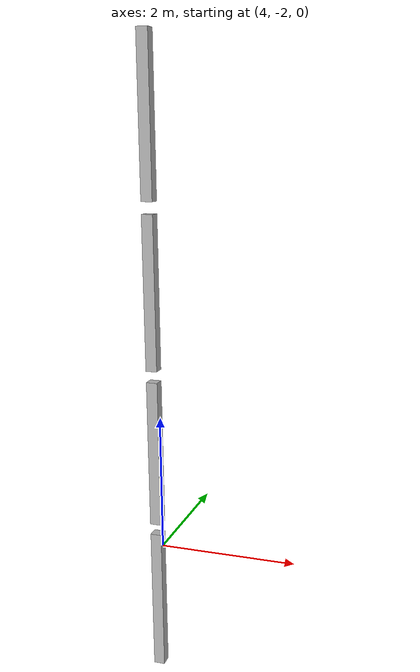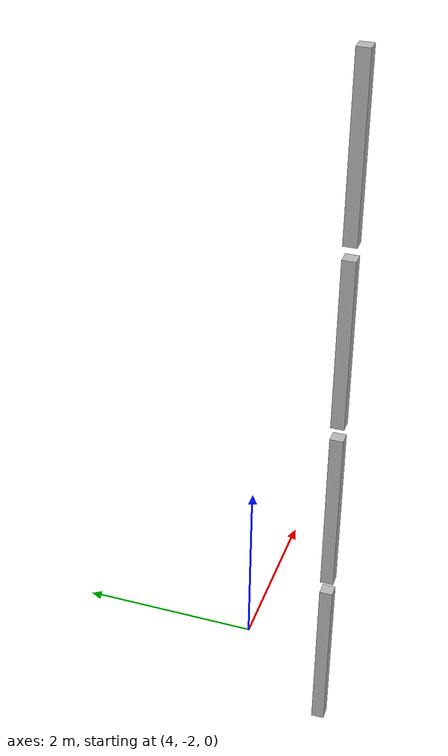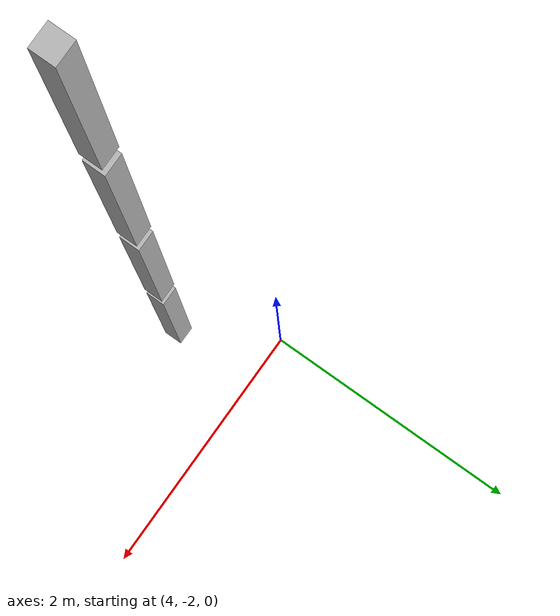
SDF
<sdf version="1.7">
 <world name="default">
  <model name="orthogonal_747_2.000.15_TS">
   <static>1</static>
   <link name="z_link_1_1_5">
    <inertial>
     <mass>1</mass>
     <inertia>
      <ixx>0.166667</ixx>
      <ixy>0</ixy>
      <ixz>0</ixz>
      <iyy>0.166667</iyy>
      <iyz>0</iyz>
      <izz>0.166667</izz>
     </inertia>
    </inertial>
    <pose>10.75 2.15 2.15 0 -0 0</pose>
    <visual name="visual_0">
     <laser_retro>1093</laser_retro>
     <geometry><box><size>0.15 1e-06 2</size></box></geometry>
     <material>
      <script><name>Gazebo/Grey</name><uri>file://media/materials/scripts/gazebo.material</uri></script>
      <shader type="pixel"><normal_map>__default__</normal_map></shader>
      <ambient>0.678 0.498 0.659 1</ambient>
      <diffuse>0.7 0.7 0.7 1</diffuse>
      <specular>0.01 0.01 0.01 1</specular>
      <emissive>0 0 0 1</emissive>
     </material>
     <pose>0 -0.075 0 0 -0 0</pose>
     <transparency>1</transparency>
    </visual>
    <visual name="visual_1">
     <laser_retro>1094</laser_retro>
     <geometry><box><size>0.15 1e-06 2</size></box></geometry>
     <material>
      <script><name>Gazebo/Grey</name><uri>file://media/materials/scripts/gazebo.material</uri></script>
      <shader type="pixel"><normal_map>__default__</normal_map></shader>
      <ambient>0.447 0.624 0.812 1</ambient>
      <diffuse>0.7 0.7 0.7 1</diffuse>
      <specular>0.01 0.01 0.01 1</specular>
      <emissive>0 0 0 1</emissive>
     </material>
     <pose>0 0.075 0 0 -0 0</pose>
     <transparency>1</transparency>
    </visual>
    <visual name="visual_2">
     <laser_retro>1095</laser_retro>
     <geometry><box><size>0.15 0.15 1e-06</size></box></geometry>
     <material>
      <script><name>Gazebo/Grey</name><uri>file://media/materials/scripts/gazebo.material</uri></script>
      <shader type="pixel"><normal_map>__default__</normal_map></shader>
      <ambient>0.988 0.686 0.243 1</ambient>
      <diffuse>0.7 0.7 0.7 1</diffuse>
      <specular>0.01 0.01 0.01 1</specular>
      <emissive>0 0 0 1</emissive>
     </material>
     <pose>0 0 -1 0 -0 0</pose>
     <transparency>1</transparency>
    </visual>
    <visual name="visual_3">
     <laser_retro>1096</laser_retro>
     <geometry><box><size>1e-06 0.15 2</size></box></geometry>
     <material>
      <script><name>Gazebo/Grey</name><uri>file://media/materials/scripts/gazebo.material</uri></script>
      <shader type="pixel"><normal_map>__default__</normal_map></shader>
      <ambient>0.988 0.914 0.31 1</ambient>
      <diffuse>0.7 0.7 0.7 1</diffuse>
      <specular>0.01 0.01 0.01 1</specular>
      <emissive>0 0 0 1</emissive>
     </material>
     <pose>0.075 0 0 0 -0 0</pose>
     <transparency>1</transparency>
    </visual>
    <visual name="visual_4">
     <laser_retro>1097</laser_retro>
     <geometry><box><size>0.15 0.15 1e-06</size></box></geometry>
     <material>
      <script><name>Gazebo/Grey</name><uri>file://media/materials/scripts/gazebo.material</uri></script>
      <shader type="pixel"><normal_map>__default__</normal_map></shader>
      <ambient>0.937 0.161 0.161 1</ambient>
      <diffuse>0.7 0.7 0.7 1</diffuse>
      <specular>0.01 0.01 0.01 1</specular>
      <emissive>0 0 0 1</emissive>
     </material>
     <pose>0 0 1 0 -0 0</pose>
     <transparency>1</transparency>
    </visual>
    <visual name="visual_5">
     <laser_retro>1098</laser_retro>
     <geometry><box><size>1e-06 0.15 2</size></box></geometry>
     <material>
      <script><name>Gazebo/Grey</name><uri>file://media/materials/scripts/gazebo.material</uri></script>
      <shader type="pixel"><normal_map>__default__</normal_map></shader>
      <ambient>0.541 0.886 0.204 1</ambient>
      <diffuse>0.7 0.7 0.7 1</diffuse>
      <specular>0.01 0.01 0.01 1</specular>
      <emissive>0 0 0 1</emissive>
     </material>
     <pose>-0.075 0 0 0 -0 0</pose>
     <transparency>1</transparency>
    </visual>
    <visual name="visual_texture">
     <geometry><box><size>0.149985 0.149985 1.9998</size></box></geometry>
     <material>
      <script>
       <uri>model://BASE_MODELS/simple_block_v2_textured/materials/scripts</uri>
       <uri>model://BASE_MODELS/simple_block_v2_textured/materials/textures</uri>
       <name>metal</name>
      </script>
     </material>
     <laser_retro>1099</laser_retro>
    </visual>
    <collision name="collision">
     <geometry><box><size>0.15 0.15 2</size></box></geometry>
     <surface>
      <friction>
       <ode><mu>1</mu><mu2>1</mu2><fdir1>0 0 0</fdir1><slip1>0</slip1><slip2>0</slip2></ode>
       <torsional>
        <coefficient>1</coefficient>
        <patch_radius>0</patch_radius>
        <surface_radius>0</surface_radius>
        <use_patch_radius>1</use_patch_radius>
        <ode><slip>0</slip></ode>
       </torsional>
      </friction>
      <bounce><restitution_coefficient>0</restitution_coefficient><threshold>1e+06</threshold></bounce>
      <contact>
       <collide_without_contact>0</collide_without_contact>
       <collide_without_contact_bitmask>1</collide_without_contact_bitmask>
       <collide_bitmask>1</collide_bitmask>
       <ode>
        <soft_cfm>0</soft_cfm>
        <soft_erp>0.2</soft_erp>
        <kp>1e+13</kp>
        <kd>1</kd>
        <max_vel>0.01</max_vel>
        <min_depth>0</min_depth>
       </ode>
       <bullet>
        <split_impulse>1</split_impulse>
        <split_impulse_penetration_threshold>-0.01</split_impulse_penetration_threshold>
        <soft_cfm>0</soft_cfm>
        <soft_erp>0.2</soft_erp>
        <kp>1e+13</kp>
        <kd>1</kd>
       </bullet>
      </contact>
     </surface>
    </collision>
   </link>
   <link name="z_link_2_1_5">
    <inertial>
     <mass>1</mass>
     <inertia>
      <ixx>0.166667</ixx>
      <ixy>0</ixy>
      <ixz>0</ixz>
      <iyy>0.166667</iyy>
      <iyz>0</iyz>
      <izz>0.166667</izz>
     </inertia>
    </inertial>
    <pose>10.75 2.15 4.3 0 -0 0</pose>
    <visual name="visual_0">
     <laser_retro>1996</laser_retro>
     <geometry><box><size>0.15 1e-06 2</size></box></geometry>
     <material>
      <script><name>Gazebo/Grey</name><uri>file://media/materials/scripts/gazebo.material</uri></script>
      <shader type="pixel"><normal_map>__default__</normal_map></shader>
      <ambient>0.678 0.498 0.659 1</ambient>
      <diffuse>0.7 0.7 0.7 1</diffuse>
      <specular>0.01 0.01 0.01 1</specular>
      <emissive>0 0 0 1</emissive>
     </material>
     <pose>0 -0.075 0 0 -0 0</pose>
     <transparency>1</transparency>
    </visual>
    <visual name="visual_1">
     <laser_retro>1997</laser_retro>
     <geometry><box><size>0.15 1e-06 2</size></box></geometry>
     <material>
      <script><name>Gazebo/Grey</name><uri>file://media/materials/scripts/gazebo.material</uri></script>
      <shader type="pixel"><normal_map>__default__</normal_map></shader>
      <ambient>0.447 0.624 0.812 1</ambient>
      <diffuse>0.7 0.7 0.7 1</diffuse>
      <specular>0.01 0.01 0.01 1</specular>
      <emissive>0 0 0 1</emissive>
     </material>
     <pose>0 0.075 0 0 -0 0</pose>
     <transparency>1</transparency>
    </visual>
    <visual name="visual_2">
     <laser_retro>1998</laser_retro>
     <geometry><box><size>0.15 0.15 1e-06</size></box></geometry>
     <material>
      <script><name>Gazebo/Grey</name><uri>file://media/materials/scripts/gazebo.material</uri></script>
      <shader type="pixel"><normal_map>__default__</normal_map></shader>
      <ambient>0.988 0.686 0.243 1</ambient>
      <diffuse>0.7 0.7 0.7 1</diffuse>
      <specular>0.01 0.01 0.01 1</specular>
      <emissive>0 0 0 1</emissive>
     </material>
     <pose>0 0 -1 0 -0 0</pose>
     <transparency>1</transparency>
    </visual>
    <visual name="visual_3">
     <laser_retro>1999</laser_retro>
     <geometry><box><size>1e-06 0.15 2</size></box></geometry>
     <material>
      <script><name>Gazebo/Grey</name><uri>file://media/materials/scripts/gazebo.material</uri></script>
      <shader type="pixel"><normal_map>__default__</normal_map></shader>
      <ambient>0.988 0.914 0.31 1</ambient>
      <diffuse>0.7 0.7 0.7 1</diffuse>
      <specular>0.01 0.01 0.01 1</specular>
      <emissive>0 0 0 1</emissive>
     </material>
     <pose>0.075 0 0 0 -0 0</pose>
     <transparency>1</transparency>
    </visual>
    <visual name="visual_4">
     <laser_retro>2000</laser_retro>
     <geometry><box><size>0.15 0.15 1e-06</size></box></geometry>
     <material>
      <script><name>Gazebo/Grey</name><uri>file://media/materials/scripts/gazebo.material</uri></script>
      <shader type="pixel"><normal_map>__default__</normal_map></shader>
      <ambient>0.937 0.161 0.161 1</ambient>
      <diffuse>0.7 0.7 0.7 1</diffuse>
      <specular>0.01 0.01 0.01 1</specular>
      <emissive>0 0 0 1</emissive>
     </material>
     <pose>0 0 1 0 -0 0</pose>
     <transparency>1</transparency>
    </visual>
    <visual name="visual_5">
     <laser_retro>2001</laser_retro>
     <geometry><box><size>1e-06 0.15 2</size></box></geometry>
     <material>
      <script><name>Gazebo/Grey</name><uri>file://media/materials/scripts/gazebo.material</uri></script>
      <shader type="pixel"><normal_map>__default__</normal_map></shader>
      <ambient>0.541 0.886 0.204 1</ambient>
      <diffuse>0.7 0.7 0.7 1</diffuse>
      <specular>0.01 0.01 0.01 1</specular>
      <emissive>0 0 0 1</emissive>
     </material>
     <pose>-0.075 0 0 0 -0 0</pose>
     <transparency>1</transparency>
    </visual>
    <visual name="visual_texture">
     <geometry><box><size>0.149985 0.149985 1.9998</size></box></geometry>
     <material>
      <script>
       <uri>model://BASE_MODELS/simple_block_v2_textured/materials/scripts</uri>
       <uri>model://BASE_MODELS/simple_block_v2_textured/materials/textures</uri>
       <name>metal</name>
      </script>
     </material>
     <laser_retro>2002</laser_retro>
    </visual>
    <collision name="collision">
     <geometry><box><size>0.15 0.15 2</size></box></geometry>
     <surface>
      <friction>
       <ode><mu>1</mu><mu2>1</mu2><fdir1>0 0 0</fdir1><slip1>0</slip1><slip2>0</slip2></ode>
       <torsional>
        <coefficient>1</coefficient>
        <patch_radius>0</patch_radius>
        <surface_radius>0</surface_radius>
        <use_patch_radius>1</use_patch_radius>
        <ode><slip>0</slip></ode>
       </torsional>
      </friction>
      <bounce><restitution_coefficient>0</restitution_coefficient><threshold>1e+06</threshold></bounce>
      <contact>
       <collide_without_contact>0</collide_without_contact>
       <collide_without_contact_bitmask>1</collide_without_contact_bitmask>
       <collide_bitmask>1</collide_bitmask>
       <ode>
        <soft_cfm>0</soft_cfm>
        <soft_erp>0.2</soft_erp>
        <kp>1e+13</kp>
        <kd>1</kd>
        <max_vel>0.01</max_vel>
        <min_depth>0</min_depth>
       </ode>
       <bullet>
        <split_impulse>1</split_impulse>
        <split_impulse_penetration_threshold>-0.01</split_impulse_penetration_threshold>
        <soft_cfm>0</soft_cfm>
        <soft_erp>0.2</soft_erp>
        <kp>1e+13</kp>
        <kd>1</kd>
       </bullet>
      </contact>
     </surface>
    </collision>
   </link>
   <link name="z_link_3_1_5">
    <inertial>
     <mass>1</mass>
     <inertia>
      <ixx>0.166667</ixx>
      <ixy>0</ixy>
      <ixz>0</ixz>
      <iyy>0.166667</iyy>
      <iyz>0</iyz>
      <izz>0.166667</izz>
     </inertia>
    </inertial>
    <pose>10.75 2.15 6.45 0 -0 0</pose>
    <visual name="visual_0">
     <laser_retro>2899</laser_retro>
     <geometry><box><size>0.15 1e-06 2</size></box></geometry>
     <material>
      <script><name>Gazebo/Grey</name><uri>file://media/materials/scripts/gazebo.material</uri></script>
      <shader type="pixel"><normal_map>__default__</normal_map></shader>
      <ambient>0.678 0.498 0.659 1</ambient>
      <diffuse>0.7 0.7 0.7 1</diffuse>
      <specular>0.01 0.01 0.01 1</specular>
      <emissive>0 0 0 1</emissive>
     </material>
     <pose>0 -0.075 0 0 -0 0</pose>
     <transparency>1</transparency>
    </visual>
    <visual name="visual_1">
     <laser_retro>2900</laser_retro>
     <geometry><box><size>0.15 1e-06 2</size></box></geometry>
     <material>
      <script><name>Gazebo/Grey</name><uri>file://media/materials/scripts/gazebo.material</uri></script>
      <shader type="pixel"><normal_map>__default__</normal_map></shader>
      <ambient>0.447 0.624 0.812 1</ambient>
      <diffuse>0.7 0.7 0.7 1</diffuse>
      <specular>0.01 0.01 0.01 1</specular>
      <emissive>0 0 0 1</emissive>
     </material>
     <pose>0 0.075 0 0 -0 0</pose>
     <transparency>1</transparency>
    </visual>
    <visual name="visual_2">
     <laser_retro>2901</laser_retro>
     <geometry><box><size>0.15 0.15 1e-06</size></box></geometry>
     <material>
      <script><name>Gazebo/Grey</name><uri>file://media/materials/scripts/gazebo.material</uri></script>
      <shader type="pixel"><normal_map>__default__</normal_map></shader>
      <ambient>0.988 0.686 0.243 1</ambient>
      <diffuse>0.7 0.7 0.7 1</diffuse>
      <specular>0.01 0.01 0.01 1</specular>
      <emissive>0 0 0 1</emissive>
     </material>
     <pose>0 0 -1 0 -0 0</pose>
     <transparency>1</transparency>
    </visual>
    <visual name="visual_3">
     <laser_retro>2902</laser_retro>
     <geometry><box><size>1e-06 0.15 2</size></box></geometry>
     <material>
      <script><name>Gazebo/Grey</name><uri>file://media/materials/scripts/gazebo.material</uri></script>
      <shader type="pixel"><normal_map>__default__</normal_map></shader>
      <ambient>0.988 0.914 0.31 1</ambient>
      <diffuse>0.7 0.7 0.7 1</diffuse>
      <specular>0.01 0.01 0.01 1</specular>
      <emissive>0 0 0 1</emissive>
     </material>
     <pose>0.075 0 0 0 -0 0</pose>
     <transparency>1</transparency>
    </visual>
    <visual name="visual_4">
     <laser_retro>2903</laser_retro>
     <geometry><box><size>0.15 0.15 1e-06</size></box></geometry>
     <material>
      <script><name>Gazebo/Grey</name><uri>file://media/materials/scripts/gazebo.material</uri></script>
      <shader type="pixel"><normal_map>__default__</normal_map></shader>
      <ambient>0.937 0.161 0.161 1</ambient>
      <diffuse>0.7 0.7 0.7 1</diffuse>
      <specular>0.01 0.01 0.01 1</specular>
      <emissive>0 0 0 1</emissive>
     </material>
     <pose>0 0 1 0 -0 0</pose>
     <transparency>1</transparency>
    </visual>
    <visual name="visual_5">
     <laser_retro>2904</laser_retro>
     <geometry><box><size>1e-06 0.15 2</size></box></geometry>
     <material>
      <script><name>Gazebo/Grey</name><uri>file://media/materials/scripts/gazebo.material</uri></script>
      <shader type="pixel"><normal_map>__default__</normal_map></shader>
      <ambient>0.541 0.886 0.204 1</ambient>
      <diffuse>0.7 0.7 0.7 1</diffuse>
      <specular>0.01 0.01 0.01 1</specular>
      <emissive>0 0 0 1</emissive>
     </material>
     <pose>-0.075 0 0 0 -0 0</pose>
     <transparency>1</transparency>
    </visual>
    <visual name="visual_texture">
     <geometry><box><size>0.149985 0.149985 1.9998</size></box></geometry>
     <material>
      <script>
       <uri>model://BASE_MODELS/simple_block_v2_textured/materials/scripts</uri>
       <uri>model://BASE_MODELS/simple_block_v2_textured/materials/textures</uri>
       <name>metal</name>
      </script>
     </material>
     <laser_retro>2905</laser_retro>
    </visual>
    <collision name="collision">
     <geometry><box><size>0.15 0.15 2</size></box></geometry>
     <surface>
      <friction>
       <ode><mu>1</mu><mu2>1</mu2><fdir1>0 0 0</fdir1><slip1>0</slip1><slip2>0</slip2></ode>
       <torsional>
        <coefficient>1</coefficient>
        <patch_radius>0</patch_radius>
        <surface_radius>0</surface_radius>
        <use_patch_radius>1</use_patch_radius>
        <ode><slip>0</slip></ode>
       </torsional>
      </friction>
      <bounce><restitution_coefficient>0</restitution_coefficient><threshold>1e+06</threshold></bounce>
      <contact>
       <collide_without_contact>0</collide_without_contact>
       <collide_without_contact_bitmask>1</collide_without_contact_bitmask>
       <collide_bitmask>1</collide_bitmask>
       <ode>
        <soft_cfm>0</soft_cfm>
        <soft_erp>0.2</soft_erp>
        <kp>1e+13</kp>
        <kd>1</kd>
        <max_vel>0.01</max_vel>
        <min_depth>0</min_depth>
       </ode>
       <bullet>
        <split_impulse>1</split_impulse>
        <split_impulse_penetration_threshold>-0.01</split_impulse_penetration_threshold>
        <soft_cfm>0</soft_cfm>
        <soft_erp>0.2</soft_erp>
        <kp>1e+13</kp>
        <kd>1</kd>
       </bullet>
      </contact>
     </surface>
    </collision>
   </link>
   <link name="z_link_4_1_5">
    <inertial>
     <mass>1</mass>
     <inertia>
      <ixx>0.166667</ixx>
      <ixy>0</ixy>
      <ixz>0</ixz>
      <iyy>0.166667</iyy>
      <iyz>0</iyz>
      <izz>0.166667</izz>
     </inertia>
    </inertial>
    <pose>10.75 2.15 8.6 0 -0 0</pose>
    <visual name="visual_0">
     <laser_retro>3802</laser_retro>
     <geometry><box><size>0.15 1e-06 2</size></box></geometry>
     <material>
      <script><name>Gazebo/Grey</name><uri>file://media/materials/scripts/gazebo.material</uri></script>
      <shader type="pixel"><normal_map>__default__</normal_map></shader>
      <ambient>0.678 0.498 0.659 1</ambient>
      <diffuse>0.7 0.7 0.7 1</diffuse>
      <specular>0.01 0.01 0.01 1</specular>
      <emissive>0 0 0 1</emissive>
     </material>
     <pose>0 -0.075 0 0 -0 0</pose>
     <transparency>1</transparency>
    </visual>
    <visual name="visual_1">
     <laser_retro>3803</laser_retro>
     <geometry><box><size>0.15 1e-06 2</size></box></geometry>
     <material>
      <script><name>Gazebo/Grey</name><uri>file://media/materials/scripts/gazebo.material</uri></script>
      <shader type="pixel"><normal_map>__default__</normal_map></shader>
      <ambient>0.447 0.624 0.812 1</ambient>
      <diffuse>0.7 0.7 0.7 1</diffuse>
      <specular>0.01 0.01 0.01 1</specular>
      <emissive>0 0 0 1</emissive>
     </material>
     <pose>0 0.075 0 0 -0 0</pose>
     <transparency>1</transparency>
    </visual>
    <visual name="visual_2">
     <laser_retro>3804</laser_retro>
     <geometry><box><size>0.15 0.15 1e-06</size></box></geometry>
     <material>
      <script><name>Gazebo/Grey</name><uri>file://media/materials/scripts/gazebo.material</uri></script>
      <shader type="pixel"><normal_map>__default__</normal_map></shader>
      <ambient>0.988 0.686 0.243 1</ambient>
      <diffuse>0.7 0.7 0.7 1</diffuse>
      <specular>0.01 0.01 0.01 1</specular>
      <emissive>0 0 0 1</emissive>
     </material>
     <pose>0 0 -1 0 -0 0</pose>
     <transparency>1</transparency>
    </visual>
    <visual name="visual_3">
     <laser_retro>3805</laser_retro>
     <geometry><box><size>1e-06 0.15 2</size></box></geometry>
     <material>
      <script><name>Gazebo/Grey</name><uri>file://media/materials/scripts/gazebo.material</uri></script>
      <shader type="pixel"><normal_map>__default__</normal_map></shader>
      <ambient>0.988 0.914 0.31 1</ambient>
      <diffuse>0.7 0.7 0.7 1</diffuse>
      <specular>0.01 0.01 0.01 1</specular>
      <emissive>0 0 0 1</emissive>
     </material>
     <pose>0.075 0 0 0 -0 0</pose>
     <transparency>1</transparency>
    </visual>
    <visual name="visual_4">
     <laser_retro>3806</laser_retro>
     <geometry><box><size>0.15 0.15 1e-06</size></box></geometry>
     <material>
      <script><name>Gazebo/Grey</name><uri>file://media/materials/scripts/gazebo.material</uri></script>
      <shader type="pixel"><normal_map>__default__</normal_map></shader>
      <ambient>0.937 0.161 0.161 1</ambient>
      <diffuse>0.7 0.7 0.7 1</diffuse>
      <specular>0.01 0.01 0.01 1</specular>
      <emissive>0 0 0 1</emissive>
     </material>
     <pose>0 0 1 0 -0 0</pose>
     <transparency>1</transparency>
    </visual>
    <visual name="visual_5">
     <laser_retro>3807</laser_retro>
     <geometry><box><size>1e-06 0.15 2</size></box></geometry>
     <material>
      <script><name>Gazebo/Grey</name><uri>file://media/materials/scripts/gazebo.material</uri></script>
      <shader type="pixel"><normal_map>__default__</normal_map></shader>
      <ambient>0.541 0.886 0.204 1</ambient>
      <diffuse>0.7 0.7 0.7 1</diffuse>
      <specular>0.01 0.01 0.01 1</specular>
      <emissive>0 0 0 1</emissive>
     </material>
     <pose>-0.075 0 0 0 -0 0</pose>
     <transparency>1</transparency>
    </visual>
    <visual name="visual_texture">
     <geometry><box><size>0.149985 0.149985 1.9998</size></box></geometry>
     <material>
      <script>
       <uri>model://BASE_MODELS/simple_block_v2_textured/materials/scripts</uri>
       <uri>model://BASE_MODELS/simple_block_v2_textured/materials/textures</uri>
       <name>metal</name>
      </script>
     </material>
     <laser_retro>3808</laser_retro>
    </visual>
    <collision name="collision">
     <geometry><box><size>0.15 0.15 2</size></box></geometry>
     <surface>
      <friction>
       <ode><mu>1</mu><mu2>1</mu2><fdir1>0 0 0</fdir1><slip1>0</slip1><slip2>0</slip2></ode>
       <torsional>
        <coefficient>1</coefficient>
        <patch_radius>0</patch_radius>
        <surface_radius>0</surface_radius>
        <use_patch_radius>1</use_patch_radius>
        <ode><slip>0</slip></ode>
       </torsional>
      </friction>
      <bounce><restitution_coefficient>0</restitution_coefficient><threshold>1e+06</threshold></bounce>
      <contact>
       <collide_without_contact>0</collide_without_contact>
       <collide_without_contact_bitmask>1</collide_without_contact_bitmask>
       <collide_bitmask>1</collide_bitmask>
       <ode>
        <soft_cfm>0</soft_cfm>
        <soft_erp>0.2</soft_erp>
        <kp>1e+13</kp>
        <kd>1</kd>
        <max_vel>0.01</max_vel>
        <min_depth>0</min_depth>
       </ode>
       <bullet>
        <split_impulse>1</split_impulse>
        <split_impulse_penetration_threshold>-0.01</split_impulse_penetration_threshold>
        <soft_cfm>0</soft_cfm>
        <soft_erp>0.2</soft_erp>
        <kp>1e+13</kp>
        <kd>1</kd>
       </bullet>
      </contact>
     </surface>
    </collision>
   </link>
   <pose>-6.47624 -5 -2.5 0 -0 0</pose>
  </model>
 </world>
</sdf>
